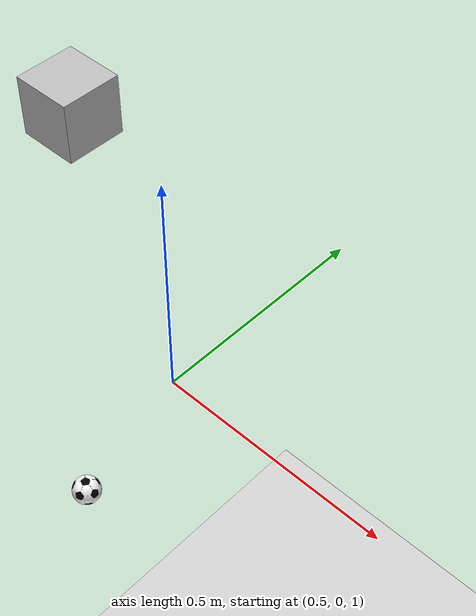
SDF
<?xml version="1.0" ?>

<sdf version="1.8">
  <world name="default">
    <physics name="1ms" type="ignored">
      <max_step_size>0.001</max_step_size>
      <real_time_factor>1.0</real_time_factor>
    </physics>

    <light type="directional" name="sun">
      <cast_shadows>true</cast_shadows>
      <pose>0 0 10 0 0 0</pose>
      <diffuse>0.8 0.8 0.8 1</diffuse>
      <specular>0.2 0.2 0.2 1</specular>
      <attenuation>
        <range>1000</range>
        <constant>0.9</constant>
        <linear>0.01</linear>
        <quadratic>0.001</quadratic>
      </attenuation>
      <direction>0.0 -1.0 -0.9</direction>
    </light>

    <model name="ground_plane">
      <static>true</static>
      <link name="link">
        <collision name="collision">
          <geometry>
            <plane>
              <normal>0 0 1</normal>
              <size>100 100</size>
            </plane>
          </geometry>
        </collision>
        <visual name="visual">
          <geometry>
            <plane>
              <normal>0 0 1</normal>
              <size>100 100</size>
            </plane>
          </geometry>
          <material>
            <ambient>0.8 0.8 0.8 1</ambient>
            <diffuse>0.8 0.8 0.8 1</diffuse>
            <specular>0.8 0.8 0.8 1</specular>
          </material>
        </visual>
      </link>
    </model>

    <!-- Depth Camera Model -->
    <model name="depth_camera">
      <!-- Place camera at same pose as RealSense -->
      <pose>0.45 -0.12 1.70 0.0 1.5708 -1.5708</pose>
      <static>true</static>
      <link name="camera_link">
        <visual name="visual">
          <geometry>
            <box>
              <size>0.1 0.1 0.1</size>
            </box>
          </geometry>
        </visual>
        <sensor name="depth_camera_sensor" type="rgbd_camera">
          <pose>0 0 0 0 0 0</pose>
          <always_on>true</always_on>
          <update_rate>10</update_rate>
          <camera>
            <horizontal_fov>1.399</horizontal_fov>
            <image>
              <width>640</width>
              <height>480</height>
              <format>R8G8B8</format>
            </image>
            <clip>
              <near>0.3</near>
              <far>2.0</far>
            </clip>
          </camera>
        </sensor>

      </link>
    </model>

  <!-- The football -->
    <model name="my_mesh">
    <pose>0.45 -0.2 0.8 0 0 0</pose>
    <static>true</static>
    <link name="body">
      <visual name="visual">
        <geometry>
          <mesh>
              <uri>model://demo/meshes/football.dae</uri>
              <scale>0.1 0.1 0.1</scale>
          </mesh>
        </geometry>
      </visual>
      <collision name="collision">
          <geometry>
              <mesh>
                  <uri>model://demo/meshes/football.dae</uri>
                  <scale>0.1 0.1 0.1</scale>
              </mesh>
          </geometry>
      </collision>
      </link>
    </model>

    <!-- Load required plugins -->
    <plugin
      filename="gz-sim-physics-system"
      name="gz::sim::systems::Physics">
    </plugin>
    <plugin
      filename="gz-sim-sensors-system"
      name="gz::sim::systems::Sensors">
      <render_engine>ogre2</render_engine>
    </plugin>
    <plugin
      filename="gz-sim-user-commands-system"
      name="gz::sim::systems::UserCommands">
    </plugin>
    <plugin
      filename="gz-sim-scene-broadcaster-system"
      name="gz::sim::systems::SceneBroadcaster">
    </plugin>

  </world>
</sdf>
